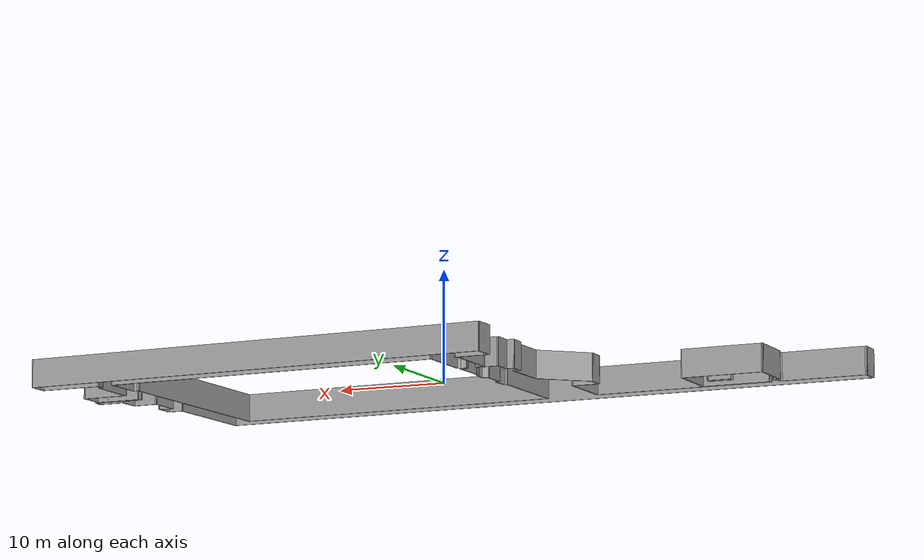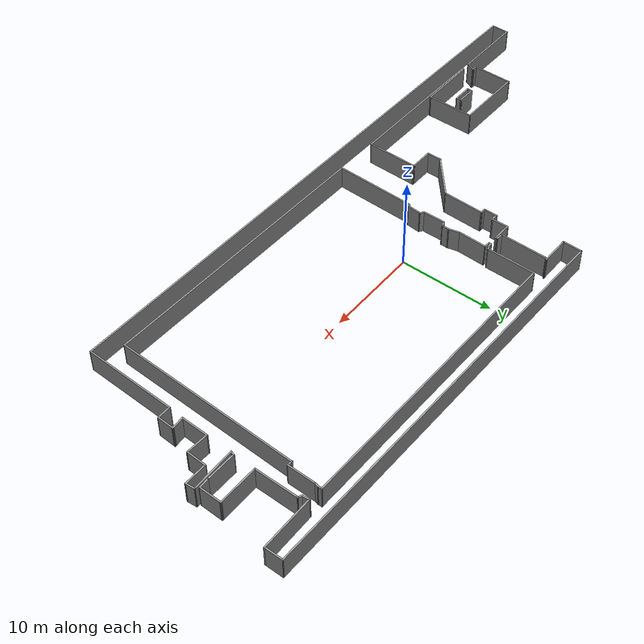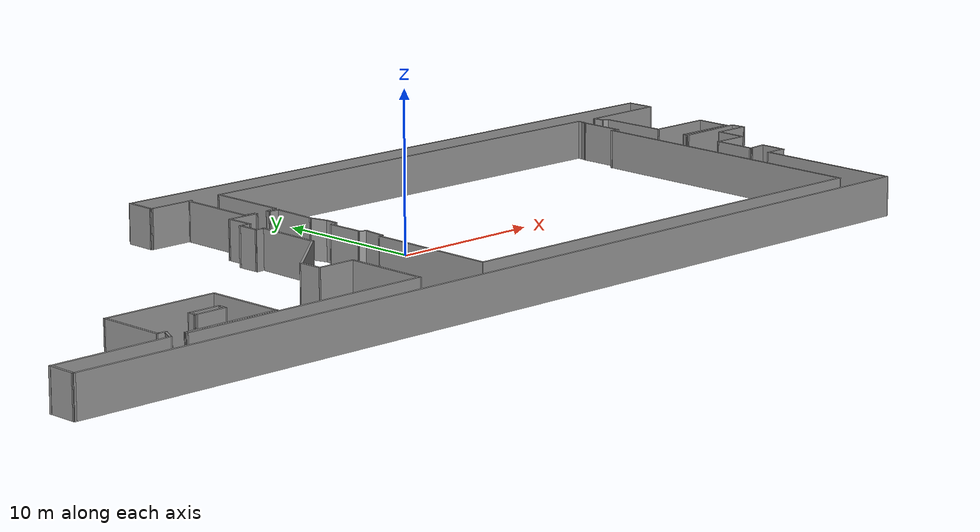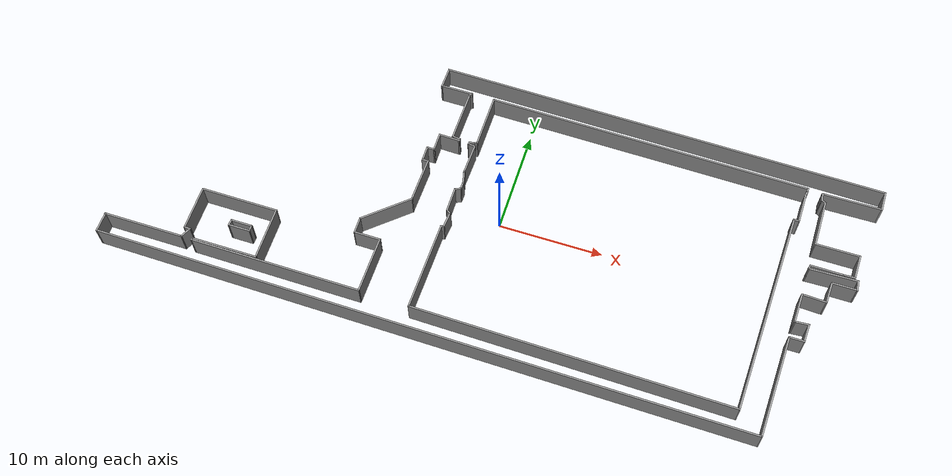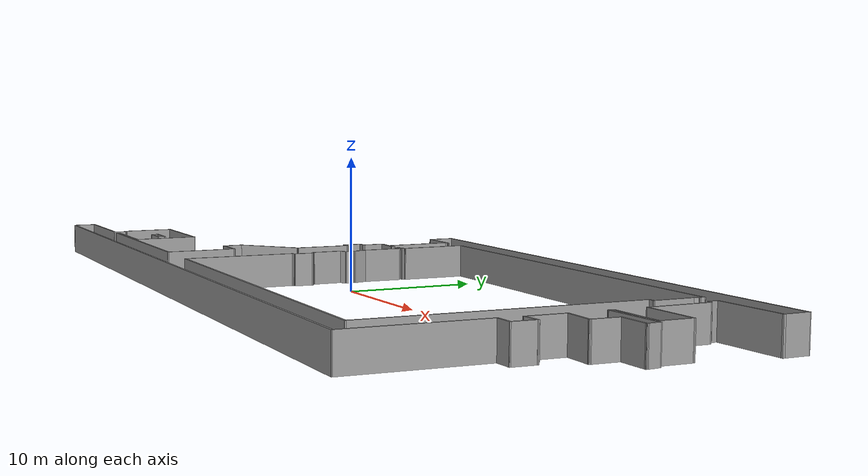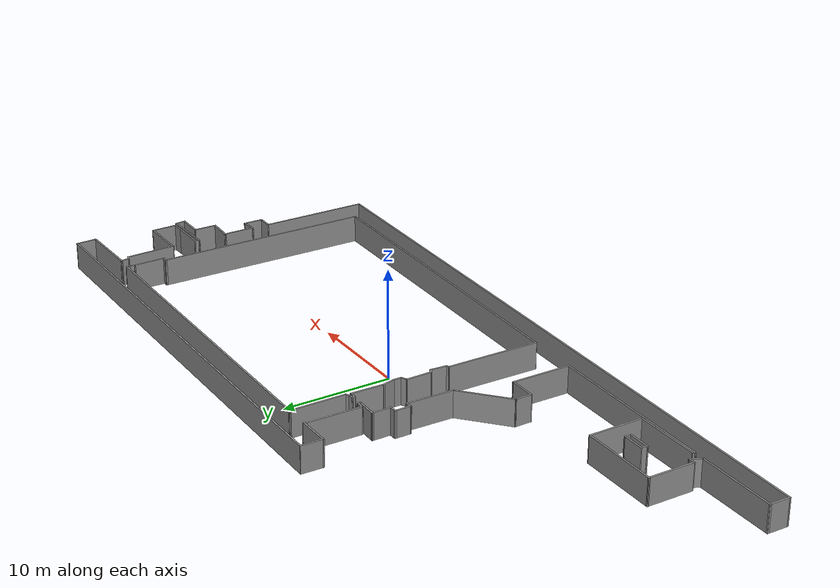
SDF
<?xml version='1.0'?>
<sdf version='1.7'>
  <model name='EnvDC_2ndfloor'>
    <pose>-0.569847 -0.041602 0 0 -0 0</pose>
    <link name='Wall_1'>
      <collision name='Wall_1_Collision'>
        <geometry>
          <box>
            <size>1.99026 0.15 2.5</size>
          </box>
        </geometry>
        <pose>0 0 1.25 0 -0 0</pose>
      </collision>
      <visual name='Wall_1_Visual'>
        <pose>0 0 1.25 0 -0 0</pose>
        <geometry>
          <box>
            <size>1.99026 0.15 2.5</size>
          </box>
        </geometry>
        <material>
          <script>
            <uri>file://media/materials/scripts/gazebo.material</uri>
            <name>Gazebo/Grey</name>
          </script>
          <ambient>1 1 1 1</ambient>
        </material>
        <meta>
          <layer>0</layer>
        </meta>
      </visual>
      <pose>-34.1632 -11.8549 0 0 -0 -1.5877</pose>
    </link>
    <link name='Wall_10'>
      <collision name='Wall_10_Collision'>
        <geometry>
          <box>
            <size>2.17945 0.15 2.5</size>
          </box>
        </geometry>
        <pose>0 0 1.25 0 -0 0</pose>
      </collision>
      <visual name='Wall_10_Visual'>
        <pose>0 0 1.25 0 -0 0</pose>
        <geometry>
          <box>
            <size>2.17945 0.15 2.5</size>
          </box>
        </geometry>
        <material>
          <script>
            <uri>file://media/materials/scripts/gazebo.material</uri>
            <name>Gazebo/Grey</name>
          </script>
          <ambient>1 1 1 1</ambient>
        </material>
        <meta>
          <layer>0</layer>
        </meta>
      </visual>
      <pose>31.2086 1.32342 0 0 -0 1.53082</pose>
    </link>
    <link name='Wall_101'>
      <collision name='Wall_101_Collision'>
        <geometry>
          <box>
            <size>1.57039 0.15 2.5</size>
          </box>
        </geometry>
        <pose>0 0 1.25 0 -0 0</pose>
      </collision>
      <visual name='Wall_101_Visual'>
        <pose>0 0 1.25 0 -0 0</pose>
        <geometry>
          <box>
            <size>1.57039 0.15 2.5</size>
          </box>
        </geometry>
        <material>
          <script>
            <uri>file://media/materials/scripts/gazebo.material</uri>
            <name>Gazebo/Grey</name>
          </script>
          <ambient>1 1 1 1</ambient>
        </material>
        <meta>
          <layer>0</layer>
        </meta>
      </visual>
      <pose>-3.86996 -2.02375 0 0 -0 -1.65652</pose>
    </link>
    <link name='Wall_103'>
      <collision name='Wall_103_Collision'>
        <geometry>
          <box>
            <size>0.402426 0.15 2.5</size>
          </box>
        </geometry>
        <pose>0 0 1.25 0 -0 0</pose>
      </collision>
      <visual name='Wall_103_Visual'>
        <pose>0 0 1.25 0 -0 0</pose>
        <geometry>
          <box>
            <size>0.402426 0.15 2.5</size>
          </box>
        </geometry>
        <material>
          <script>
            <uri>file://media/materials/scripts/gazebo.material</uri>
            <name>Gazebo/Grey</name>
          </script>
          <ambient>1 1 1 1</ambient>
        </material>
        <meta>
          <layer>0</layer>
        </meta>
      </visual>
      <pose>-4.04674 -2.78056 0 0 -0 -2.7367</pose>
    </link>
    <link name='Wall_104'>
      <collision name='Wall_104_Collision'>
        <geometry>
          <box>
            <size>8.63748 0.15 2.5</size>
          </box>
        </geometry>
        <pose>0 0 1.25 0 -0 0</pose>
      </collision>
      <visual name='Wall_104_Visual'>
        <pose>0 0 1.25 0 -0 0</pose>
        <geometry>
          <box>
            <size>8.63748 0.15 2.5</size>
          </box>
        </geometry>
        <material>
          <script>
            <uri>file://media/materials/scripts/gazebo.material</uri>
            <name>Gazebo/Grey</name>
          </script>
          <ambient>1 1 1 1</ambient>
        </material>
        <meta>
          <layer>0</layer>
        </meta>
      </visual>
      <pose>-4.26218 -7.07285 0 0 -0 -1.59423</pose>
    </link>
    <link name='Wall_11'>
      <collision name='Wall_11_Collision'>
        <geometry>
          <box>
            <size>2.46182 0.15 2.5</size>
          </box>
        </geometry>
        <pose>0 0 1.25 0 -0 0</pose>
      </collision>
      <visual name='Wall_11_Visual'>
        <pose>0 0 1.25 0 -0 0</pose>
        <geometry>
          <box>
            <size>2.46182 0.15 2.5</size>
          </box>
        </geometry>
        <material>
          <script>
            <uri>file://media/materials/scripts/gazebo.material</uri>
            <name>Gazebo/Grey</name>
          </script>
          <ambient>1 1 1 1</ambient>
        </material>
        <meta>
          <layer>0</layer>
        </meta>
      </visual>
      <pose>32.405 2.32719 0 0 -0 -0.008772</pose>
    </link>
    <link name='Wall_12'>
      <collision name='Wall_12_Collision'>
        <geometry>
          <box>
            <size>1.06612 0.15 2.5</size>
          </box>
        </geometry>
        <pose>0 0 1.25 0 -0 0</pose>
      </collision>
      <visual name='Wall_12_Visual'>
        <pose>0 0 1.25 0 -0 0</pose>
        <geometry>
          <box>
            <size>1.06612 0.15 2.5</size>
          </box>
        </geometry>
        <material>
          <script>
            <uri>file://media/materials/scripts/gazebo.material</uri>
            <name>Gazebo/Grey</name>
          </script>
          <ambient>1 1 1 1</ambient>
        </material>
        <meta>
          <layer>0</layer>
        </meta>
      </visual>
      <pose>33.5203 2.77332 0 0 -0 1.65945</pose>
    </link>
    <link name='Wall_13'>
      <collision name='Wall_13_Collision'>
        <geometry>
          <box>
            <size>4.67321 0.15 2.5</size>
          </box>
        </geometry>
        <pose>0 0 1.25 0 -0 0</pose>
      </collision>
      <visual name='Wall_13_Visual'>
        <pose>0 0 1.25 0 -0 0</pose>
        <geometry>
          <box>
            <size>4.67321 0.15 2.5</size>
          </box>
        </geometry>
        <material>
          <script>
            <uri>file://media/materials/scripts/gazebo.material</uri>
            <name>Gazebo/Grey</name>
          </script>
          <ambient>1 1 1 1</ambient>
        </material>
        <meta>
          <layer>0</layer>
        </meta>
      </visual>
      <pose>31.2187 3.17889 0 0 -0 -3.11917</pose>
    </link>
    <link name='Wall_14'>
      <collision name='Wall_14_Collision'>
        <geometry>
          <box>
            <size>0.504146 0.15 2.5</size>
          </box>
        </geometry>
        <pose>0 0 1.25 0 -0 0</pose>
      </collision>
      <visual name='Wall_14_Visual'>
        <pose>0 0 1.25 0 -0 0</pose>
        <geometry>
          <box>
            <size>0.504146 0.15 2.5</size>
          </box>
        </geometry>
        <material>
          <script>
            <uri>file://media/materials/scripts/gazebo.material</uri>
            <name>Gazebo/Grey</name>
          </script>
          <ambient>1 1 1 1</ambient>
        </material>
        <meta>
          <layer>0</layer>
        </meta>
      </visual>
      <pose>28.9982 3.30056 0 0 -0 1.33971</pose>
    </link>
    <link name='Wall_15'>
      <collision name='Wall_15_Collision'>
        <geometry>
          <box>
            <size>3.23257 0.15 2.5</size>
          </box>
        </geometry>
        <pose>0 0 1.25 0 -0 0</pose>
      </collision>
      <visual name='Wall_15_Visual'>
        <pose>0 0 1.25 0 -0 0</pose>
        <geometry>
          <box>
            <size>3.23257 0.15 2.5</size>
          </box>
        </geometry>
        <material>
          <script>
            <uri>file://media/materials/scripts/gazebo.material</uri>
            <name>Gazebo/Grey</name>
          </script>
          <ambient>1 1 1 1</ambient>
        </material>
        <meta>
          <layer>0</layer>
        </meta>
      </visual>
      <pose>30.5799 3.45264 0 0 -0 -0.013157</pose>
    </link>
    <link name='Wall_16'>
      <collision name='Wall_16_Collision'>
        <geometry>
          <box>
            <size>1.16412 0.15 2.5</size>
          </box>
        </geometry>
        <pose>0 0 1.25 0 -0 0</pose>
      </collision>
      <visual name='Wall_16_Visual'>
        <pose>0 0 1.25 0 -0 0</pose>
        <geometry>
          <box>
            <size>1.16412 0.15 2.5</size>
          </box>
        </geometry>
        <material>
          <script>
            <uri>file://media/materials/scripts/gazebo.material</uri>
            <name>Gazebo/Grey</name>
          </script>
          <ambient>1 1 1 1</ambient>
        </material>
        <meta>
          <layer>0</layer>
        </meta>
      </visual>
      <pose>32.6281 3.45264 0 0 -0 0.039979</pose>
    </link>
    <link name='Wall_17'>
      <collision name='Wall_17_Collision'>
        <geometry>
          <box>
            <size>2.42153 0.15 2.5</size>
          </box>
        </geometry>
        <pose>0 0 1.25 0 -0 0</pose>
      </collision>
      <visual name='Wall_17_Visual'>
        <pose>0 0 1.25 0 -0 0</pose>
        <geometry>
          <box>
            <size>2.42153 0.15 2.5</size>
          </box>
        </geometry>
        <material>
          <script>
            <uri>file://media/materials/scripts/gazebo.material</uri>
            <name>Gazebo/Grey</name>
          </script>
          <ambient>1 1 1 1</ambient>
        </material>
        <meta>
          <layer>0</layer>
        </meta>
      </visual>
      <pose>33.1553 4.60851 0 0 -0 1.55294</pose>
    </link>
    <link name='Wall_18'>
      <collision name='Wall_18_Collision'>
        <geometry>
          <box>
            <size>4.28678 0.15 2.5</size>
          </box>
        </geometry>
        <pose>0 0 1.25 0 -0 0</pose>
      </collision>
      <visual name='Wall_18_Visual'>
        <pose>0 0 1.25 0 -0 0</pose>
        <geometry>
          <box>
            <size>4.28678 0.15 2.5</size>
          </box>
        </geometry>
        <material>
          <script>
            <uri>file://media/materials/scripts/gazebo.material</uri>
            <name>Gazebo/Grey</name>
          </script>
          <ambient>1 1 1 1</ambient>
        </material>
        <meta>
          <layer>0</layer>
        </meta>
      </visual>
      <pose>31.1072 5.75423 0 0 -0 3.13669</pose>
    </link>
    <link name='Wall_2'>
      <collision name='Wall_2_Collision'>
        <geometry>
          <box>
            <size>62.7268 0.15 2.5</size>
          </box>
        </geometry>
        <pose>0 0 1.25 0 -0 0</pose>
      </collision>
      <visual name='Wall_2_Visual'>
        <pose>0 0 1.25 0 -0 0</pose>
        <geometry>
          <box>
            <size>62.7268 0.15 2.5</size>
          </box>
        </geometry>
        <material>
          <script>
            <uri>file://media/materials/scripts/gazebo.material</uri>
            <name>Gazebo/Grey</name>
          </script>
          <ambient>1 1 1 1</ambient>
        </material>
        <meta>
          <layer>0</layer>
        </meta>
      </visual>
      <pose>-2.89443 -13.2794 0 0 -0 -0.016126</pose>
    </link>
    <link name='Wall_20'>
      <collision name='Wall_20_Collision'>
        <geometry>
          <box>
            <size>4.65179 0.15 2.5</size>
          </box>
        </geometry>
        <pose>0 0 1.25 0 -0 0</pose>
      </collision>
      <visual name='Wall_20_Visual'>
        <pose>0 0 1.25 0 -0 0</pose>
        <geometry>
          <box>
            <size>4.65179 0.15 2.5</size>
          </box>
        </geometry>
        <material>
          <script>
            <uri>file://media/materials/scripts/gazebo.material</uri>
            <name>Gazebo/Grey</name>
          </script>
          <ambient>1 1 1 1</ambient>
        </material>
        <meta>
          <layer>0</layer>
        </meta>
      </visual>
      <pose>29.0388 8.01527 0 0 -0 1.5708</pose>
    </link>
    <link name='Wall_22'>
      <collision name='Wall_22_Collision'>
        <geometry>
          <box>
            <size>0.529925 0.15 2.5</size>
          </box>
        </geometry>
        <pose>0 0 1.25 0 -0 0</pose>
      </collision>
      <visual name='Wall_22_Visual'>
        <pose>0 0 1.25 0 -0 0</pose>
        <geometry>
          <box>
            <size>0.529925 0.15 2.5</size>
          </box>
        </geometry>
        <material>
          <script>
            <uri>file://media/materials/scripts/gazebo.material</uri>
            <name>Gazebo/Grey</name>
          </script>
          <ambient>1 1 1 1</ambient>
        </material>
        <meta>
          <layer>0</layer>
        </meta>
      </visual>
      <pose>28.8692 10.3518 0 0 -0 2.67384</pose>
    </link>
    <link name='Wall_23'>
      <collision name='Wall_23_Collision'>
        <geometry>
          <box>
            <size>0.846416 0.15 2.5</size>
          </box>
        </geometry>
        <pose>0 0 1.25 0 -0 0</pose>
      </collision>
      <visual name='Wall_23_Visual'>
        <pose>0 0 1.25 0 -0 0</pose>
        <geometry>
          <box>
            <size>0.846416 0.15 2.5</size>
          </box>
        </geometry>
        <material>
          <script>
            <uri>file://media/materials/scripts/gazebo.material</uri>
            <name>Gazebo/Grey</name>
          </script>
          <ambient>1 1 1 1</ambient>
        </material>
        <meta>
          <layer>0</layer>
        </meta>
      </visual>
      <pose>28.6593 10.7833 0 0 -0 1.68694</pose>
    </link>
    <link name='Wall_25'>
      <collision name='Wall_25_Collision'>
        <geometry>
          <box>
            <size>5.71068 0.15 2.5</size>
          </box>
        </geometry>
        <pose>0 0 1.25 0 -0 0</pose>
      </collision>
      <visual name='Wall_25_Visual'>
        <pose>0 0 1.25 0 -0 0</pose>
        <geometry>
          <box>
            <size>5.71068 0.15 2.5</size>
          </box>
        </geometry>
        <material>
          <script>
            <uri>file://media/materials/scripts/gazebo.material</uri>
            <name>Gazebo/Grey</name>
          </script>
          <ambient>1 1 1 1</ambient>
        </material>
        <meta>
          <layer>0</layer>
        </meta>
      </visual>
      <pose>31.3993 11.1452 0 0 -0 0.005758</pose>
    </link>
    <link name='Wall_26'>
      <collision name='Wall_26_Collision'>
        <geometry>
          <box>
            <size>1.96947 0.15 2.5</size>
          </box>
        </geometry>
        <pose>0 0 1.25 0 -0 0</pose>
      </collision>
      <visual name='Wall_26_Visual'>
        <pose>0 0 1.25 0 -0 0</pose>
        <geometry>
          <box>
            <size>1.96947 0.15 2.5</size>
          </box>
        </geometry>
        <material>
          <script>
            <uri>file://media/materials/scripts/gazebo.material</uri>
            <name>Gazebo/Grey</name>
          </script>
          <ambient>1 1 1 1</ambient>
        </material>
        <meta>
          <layer>0</layer>
        </meta>
      </visual>
      <pose>34.1745 12.0709 0 0 -0 1.57638</pose>
    </link>
    <link name='Wall_28'>
      <collision name='Wall_28_Collision'>
        <geometry>
          <box>
            <size>43.2456 0.15 2.5</size>
          </box>
        </geometry>
        <pose>0 0 1.25 0 -0 0</pose>
      </collision>
      <visual name='Wall_28_Visual'>
        <pose>0 0 1.25 0 -0 0</pose>
        <geometry>
          <box>
            <size>43.2456 0.15 2.5</size>
          </box>
        </geometry>
        <material>
          <script>
            <uri>file://media/materials/scripts/gazebo.material</uri>
            <name>Gazebo/Grey</name>
          </script>
          <ambient>1 1 1 1</ambient>
        </material>
        <meta>
          <layer>0</layer>
        </meta>
      </visual>
      <pose>12.625 13.3825 0 0 -0 3.12294</pose>
    </link>
    <link name='Wall_29'>
      <collision name='Wall_29_Collision'>
        <geometry>
          <box>
            <size>2.12365 0.15 2.5</size>
          </box>
        </geometry>
        <pose>0 0 1.25 0 -0 0</pose>
      </collision>
      <visual name='Wall_29_Visual'>
        <pose>0 0 1.25 0 -0 0</pose>
        <geometry>
          <box>
            <size>2.12365 0.15 2.5</size>
          </box>
        </geometry>
        <material>
          <script>
            <uri>file://media/materials/scripts/gazebo.material</uri>
            <name>Gazebo/Grey</name>
          </script>
          <ambient>1 1 1 1</ambient>
        </material>
        <meta>
          <layer>0</layer>
        </meta>
      </visual>
      <pose>-8.94602 12.7978 0 0 -0 -1.59782</pose>
    </link>
    <link name='Wall_30'>
      <collision name='Wall_30_Collision'>
        <geometry>
          <box>
            <size>3.20783 0.15 2.5</size>
          </box>
        </geometry>
        <pose>0 0 1.25 0 -0 0</pose>
      </collision>
      <visual name='Wall_30_Visual'>
        <pose>0 0 1.25 0 -0 0</pose>
        <geometry>
          <box>
            <size>3.20783 0.15 2.5</size>
          </box>
        </geometry>
        <material>
          <script>
            <uri>file://media/materials/scripts/gazebo.material</uri>
            <name>Gazebo/Grey</name>
          </script>
          <ambient>1 1 1 1</ambient>
        </material>
        <meta>
          <layer>0</layer>
        </meta>
      </visual>
      <pose>-7.4438 11.8022 0 0 -0 -0.005814</pose>
    </link>
    <link name='Wall_31'>
      <collision name='Wall_31_Collision'>
        <geometry>
          <box>
            <size>0.389176 0.15 2.5</size>
          </box>
        </geometry>
        <pose>0 0 1.25 0 -0 0</pose>
      </collision>
      <visual name='Wall_31_Visual'>
        <pose>0 0 1.25 0 -0 0</pose>
        <geometry>
          <box>
            <size>0.389176 0.15 2.5</size>
          </box>
        </geometry>
        <material>
          <script>
            <uri>file://media/materials/scripts/gazebo.material</uri>
            <name>Gazebo/Grey</name>
          </script>
          <ambient>1 1 1 1</ambient>
        </material>
        <meta>
          <layer>0</layer>
        </meta>
      </visual>
      <pose>-6.0038 11.7133 0 0 -0 -2.40878</pose>
    </link>
    <link name='Wall_35'>
      <collision name='Wall_35_Collision'>
        <geometry>
          <box>
            <size>5.10162 0.15 2.5</size>
          </box>
        </geometry>
        <pose>0 0 1.25 0 -0 0</pose>
      </collision>
      <visual name='Wall_35_Visual'>
        <pose>0 0 1.25 0 -0 0</pose>
        <geometry>
          <box>
            <size>5.10162 0.15 2.5</size>
          </box>
        </geometry>
        <material>
          <script>
            <uri>file://media/materials/scripts/gazebo.material</uri>
            <name>Gazebo/Grey</name>
          </script>
          <ambient>1 1 1 1</ambient>
        </material>
        <meta>
          <layer>0</layer>
        </meta>
      </visual>
      <pose>-6.13249 9.15785 0 0 -0 -1.58688</pose>
    </link>
    <link name='Wall_37'>
      <collision name='Wall_37_Collision'>
        <geometry>
          <box>
            <size>0.857235 0.15 2.5</size>
          </box>
        </geometry>
        <pose>0 0 1.25 0 -0 0</pose>
      </collision>
      <visual name='Wall_37_Visual'>
        <pose>0 0 1.25 0 -0 0</pose>
        <geometry>
          <box>
            <size>0.857235 0.15 2.5</size>
          </box>
        </geometry>
        <material>
          <script>
            <uri>file://media/materials/scripts/gazebo.material</uri>
            <name>Gazebo/Grey</name>
          </script>
          <ambient>1 1 1 1</ambient>
        </material>
        <meta>
          <layer>0</layer>
        </meta>
      </visual>
      <pose>-5.82253 6.63064 0 0 -0 -0.146804</pose>
    </link>
    <link name='Wall_38'>
      <collision name='Wall_38_Collision'>
        <geometry>
          <box>
            <size>0.311188 0.15 2.5</size>
          </box>
        </geometry>
        <pose>0 0 1.25 0 -0 0</pose>
      </collision>
      <visual name='Wall_38_Visual'>
        <pose>0 0 1.25 0 -0 0</pose>
        <geometry>
          <box>
            <size>0.311188 0.15 2.5</size>
          </box>
        </geometry>
        <material>
          <script>
            <uri>file://media/materials/scripts/gazebo.material</uri>
            <name>Gazebo/Grey</name>
          </script>
          <ambient>1 1 1 1</ambient>
        </material>
        <meta>
          <layer>0</layer>
        </meta>
      </visual>
      <pose>-5.47056 6.49807 0 0 -0 -1.54353</pose>
    </link>
    <link name='Wall_4'>
      <collision name='Wall_4_Collision'>
        <geometry>
          <box>
            <size>9.90862 0.15 2.5</size>
          </box>
        </geometry>
        <pose>0 0 1.25 0 -0 0</pose>
      </collision>
      <visual name='Wall_4_Visual'>
        <pose>0 0 1.25 0 -0 0</pose>
        <geometry>
          <box>
            <size>9.90862 0.15 2.5</size>
          </box>
        </geometry>
        <material>
          <script>
            <uri>file://media/materials/scripts/gazebo.material</uri>
            <name>Gazebo/Grey</name>
          </script>
          <ambient>1 1 1 1</ambient>
        </material>
        <meta>
          <layer>0</layer>
        </meta>
      </visual>
      <pose>28.542 -8.907 0 0 -0 1.53962</pose>
    </link>
    <link name='Wall_41'>
      <collision name='Wall_41_Collision'>
        <geometry>
          <box>
            <size>2.12879 0.15 2.5</size>
          </box>
        </geometry>
        <pose>0 0 1.25 0 -0 0</pose>
      </collision>
      <visual name='Wall_41_Visual'>
        <pose>0 0 1.25 0 -0 0</pose>
        <geometry>
          <box>
            <size>2.12879 0.15 2.5</size>
          </box>
        </geometry>
        <material>
          <script>
            <uri>file://media/materials/scripts/gazebo.material</uri>
            <name>Gazebo/Grey</name>
          </script>
          <ambient>1 1 1 1</ambient>
        </material>
        <meta>
          <layer>0</layer>
        </meta>
      </visual>
      <pose>-6.44443 6.44695 0 0 -0 3.11124</pose>
    </link>
    <link name='Wall_43'>
      <collision name='Wall_43_Collision'>
        <geometry>
          <box>
            <size>1.85116 0.15 2.5</size>
          </box>
        </geometry>
        <pose>0 0 1.25 0 -0 0</pose>
      </collision>
      <visual name='Wall_43_Visual'>
        <pose>0 0 1.25 0 -0 0</pose>
        <geometry>
          <box>
            <size>1.85116 0.15 2.5</size>
          </box>
        </geometry>
        <material>
          <script>
            <uri>file://media/materials/scripts/gazebo.material</uri>
            <name>Gazebo/Grey</name>
          </script>
          <ambient>1 1 1 1</ambient>
        </material>
        <meta>
          <layer>0</layer>
        </meta>
      </visual>
      <pose>-7.42901 5.62641 0 0 -0 -1.56568</pose>
    </link>
    <link name='Wall_45'>
      <collision name='Wall_45_Collision'>
        <geometry>
          <box>
            <size>0.81938 0.15 2.5</size>
          </box>
        </geometry>
        <pose>0 0 1.25 0 -0 0</pose>
      </collision>
      <visual name='Wall_45_Visual'>
        <pose>0 0 1.25 0 -0 0</pose>
        <geometry>
          <box>
            <size>0.81938 0.15 2.5</size>
          </box>
        </geometry>
        <material>
          <script>
            <uri>file://media/materials/scripts/gazebo.material</uri>
            <name>Gazebo/Grey</name>
          </script>
          <ambient>1 1 1 1</ambient>
        </material>
        <meta>
          <layer>0</layer>
        </meta>
      </visual>
      <pose>-7.75923 4.77584 0 0 -0 3.14159</pose>
    </link>
    <link name='Wall_46'>
      <collision name='Wall_46_Collision'>
        <geometry>
          <box>
            <size>1.54803 0.15 2.5</size>
          </box>
        </geometry>
        <pose>0 0 1.25 0 -0 0</pose>
      </collision>
      <visual name='Wall_46_Visual'>
        <pose>0 0 1.25 0 -0 0</pose>
        <geometry>
          <box>
            <size>1.54803 0.15 2.5</size>
          </box>
        </geometry>
        <material>
          <script>
            <uri>file://media/materials/scripts/gazebo.material</uri>
            <name>Gazebo/Grey</name>
          </script>
          <ambient>1 1 1 1</ambient>
        </material>
        <meta>
          <layer>0</layer>
        </meta>
      </visual>
      <pose>-8.0938 4.07683 0 0 -0 -1.5708</pose>
    </link>
    <link name='Wall_5'>
      <collision name='Wall_5_Collision'>
        <geometry>
          <box>
            <size>1.5 0.15 2.5</size>
          </box>
        </geometry>
        <pose>0 0 1.25 0 -0 0</pose>
      </collision>
      <visual name='Wall_5_Visual'>
        <pose>0 0 1.25 0 -0 0</pose>
        <geometry>
          <box>
            <size>1.5 0.15 2.5</size>
          </box>
        </geometry>
        <material>
          <script>
            <uri>file://media/materials/scripts/gazebo.material</uri>
            <name>Gazebo/Grey</name>
          </script>
          <ambient>1 1 1 1</ambient>
        </material>
        <meta>
          <layer>0</layer>
        </meta>
      </visual>
      <pose>29.3691 -4.03006 0 0 -0 0</pose>
    </link>
    <link name='Wall_50'>
      <collision name='Wall_50_Collision'>
        <geometry>
          <box>
            <size>0.687835 0.15 2.5</size>
          </box>
        </geometry>
        <pose>0 0 1.25 0 -0 0</pose>
      </collision>
      <visual name='Wall_50_Visual'>
        <pose>0 0 1.25 0 -0 0</pose>
        <geometry>
          <box>
            <size>0.687835 0.15 2.5</size>
          </box>
        </geometry>
        <material>
          <script>
            <uri>file://media/materials/scripts/gazebo.material</uri>
            <name>Gazebo/Grey</name>
          </script>
          <ambient>1 1 1 1</ambient>
        </material>
        <meta>
          <layer>0</layer>
        </meta>
      </visual>
      <pose>-7.82495 3.37781 0 0 -0 0.022219</pose>
    </link>
    <link name='Wall_52'>
      <collision name='Wall_52_Collision'>
        <geometry>
          <box>
            <size>4.46619 0.15 2.5</size>
          </box>
        </geometry>
        <pose>0 0 1.25 0 -0 0</pose>
      </collision>
      <visual name='Wall_52_Visual'>
        <pose>0 0 1.25 0 -0 0</pose>
        <geometry>
          <box>
            <size>4.46619 0.15 2.5</size>
          </box>
        </geometry>
        <material>
          <script>
            <uri>file://media/materials/scripts/gazebo.material</uri>
            <name>Gazebo/Grey</name>
          </script>
          <ambient>1 1 1 1</ambient>
        </material>
        <meta>
          <layer>0</layer>
        </meta>
      </visual>
      <pose>-7.61458 1.22648 0 0 -0 -1.5979</pose>
    </link>
    <link name='Wall_53'>
      <collision name='Wall_53_Collision'>
        <geometry>
          <box>
            <size>5.29225 0.15 2.5</size>
          </box>
        </geometry>
        <pose>0 0 1.25 0 -0 0</pose>
      </collision>
      <visual name='Wall_53_Visual'>
        <pose>0 0 1.25 0 -0 0</pose>
        <geometry>
          <box>
            <size>5.29225 0.15 2.5</size>
          </box>
        </geometry>
        <material>
          <script>
            <uri>file://media/materials/scripts/gazebo.material</uri>
            <name>Gazebo/Grey</name>
          </script>
          <ambient>1 1 1 1</ambient>
        </material>
        <meta>
          <layer>0</layer>
        </meta>
      </visual>
      <pose>-9.61058 -2.621 0 0 -0 -2.42427</pose>
    </link>
    <link name='Wall_54'>
      <collision name='Wall_54_Collision'>
        <geometry>
          <box>
            <size>1.63412 0.15 2.5</size>
          </box>
        </geometry>
        <pose>0 0 1.25 0 -0 0</pose>
      </collision>
      <visual name='Wall_54_Visual'>
        <pose>0 0 1.25 0 -0 0</pose>
        <geometry>
          <box>
            <size>1.63412 0.15 2.5</size>
          </box>
        </geometry>
        <material>
          <script>
            <uri>file://media/materials/scripts/gazebo.material</uri>
            <name>Gazebo/Grey</name>
          </script>
          <ambient>1 1 1 1</ambient>
        </material>
        <meta>
          <layer>0</layer>
        </meta>
      </visual>
      <pose>-11.5412 -5.0532 0 0 -0 -1.56154</pose>
    </link>
    <link name='Wall_55'>
      <collision name='Wall_55_Collision'>
        <geometry>
          <box>
            <size>2.60984 0.15 2.5</size>
          </box>
        </geometry>
        <pose>0 0 1.25 0 -0 0</pose>
      </collision>
      <visual name='Wall_55_Visual'>
        <pose>0 0 1.25 0 -0 0</pose>
        <geometry>
          <box>
            <size>2.60984 0.15 2.5</size>
          </box>
        </geometry>
        <material>
          <script>
            <uri>file://media/materials/scripts/gazebo.material</uri>
            <name>Gazebo/Grey</name>
          </script>
          <ambient>1 1 1 1</ambient>
        </material>
        <meta>
          <layer>0</layer>
        </meta>
      </visual>
      <pose>-10.3045 -5.80897 0 0 -0 -0.011173</pose>
    </link>
    <link name='Wall_57'>
      <collision name='Wall_57_Collision'>
        <geometry>
          <box>
            <size>5.56469 0.15 2.5</size>
          </box>
        </geometry>
        <pose>0 0 1.25 0 -0 0</pose>
      </collision>
      <visual name='Wall_57_Visual'>
        <pose>0 0 1.25 0 -0 0</pose>
        <geometry>
          <box>
            <size>5.56469 0.15 2.5</size>
          </box>
        </geometry>
        <material>
          <script>
            <uri>file://media/materials/scripts/gazebo.material</uri>
            <name>Gazebo/Grey</name>
          </script>
          <ambient>1 1 1 1</ambient>
        </material>
        <meta>
          <layer>0</layer>
        </meta>
      </visual>
      <pose>-9.11589 -8.52975 0 0 -0 -1.58602</pose>
    </link>
    <link name='Wall_59'>
      <collision name='Wall_59_Collision'>
        <geometry>
          <box>
            <size>16.4889 0.15 2.5</size>
          </box>
        </geometry>
        <pose>0 0 1.25 0 -0 0</pose>
      </collision>
      <visual name='Wall_59_Visual'>
        <pose>0 0 1.25 0 -0 0</pose>
        <geometry>
          <box>
            <size>16.4889 0.15 2.5</size>
          </box>
        </geometry>
        <material>
          <script>
            <uri>file://media/materials/scripts/gazebo.material</uri>
            <name>Gazebo/Grey</name>
          </script>
          <ambient>1 1 1 1</ambient>
        </material>
        <meta>
          <layer>0</layer>
        </meta>
      </visual>
      <pose>-17.3259 -11.1401 0 0 -0 3.12975</pose>
    </link>
    <link name='Wall_6'>
      <collision name='Wall_6_Collision'>
        <geometry>
          <box>
            <size>1.8548 0.15 2.5</size>
          </box>
        </geometry>
        <pose>0 0 1.25 0 -0 0</pose>
      </collision>
      <visual name='Wall_6_Visual'>
        <pose>0 0 1.25 0 -0 0</pose>
        <geometry>
          <box>
            <size>1.8548 0.15 2.5</size>
          </box>
        </geometry>
        <material>
          <script>
            <uri>file://media/materials/scripts/gazebo.material</uri>
            <name>Gazebo/Grey</name>
          </script>
          <ambient>1 1 1 1</ambient>
        </material>
        <meta>
          <layer>0</layer>
        </meta>
      </visual>
      <pose>30.0788 -3.17837 0 0 -0 1.53003</pose>
    </link>
    <link name='Wall_60'>
      <collision name='Wall_60_Collision'>
        <geometry>
          <box>
            <size>0.32563 0.15 2.5</size>
          </box>
        </geometry>
        <pose>0 0 1.25 0 -0 0</pose>
      </collision>
      <visual name='Wall_60_Visual'>
        <pose>0 0 1.25 0 -0 0</pose>
        <geometry>
          <box>
            <size>0.32563 0.15 2.5</size>
          </box>
        </geometry>
        <material>
          <script>
            <uri>file://media/materials/scripts/gazebo.material</uri>
            <name>Gazebo/Grey</name>
          </script>
          <ambient>1 1 1 1</ambient>
        </material>
        <meta>
          <layer>0</layer>
        </meta>
      </visual>
      <pose>-25.4502 -10.9676 0 0 -0 1.04058</pose>
    </link>
    <link name='Wall_61'>
      <collision name='Wall_61_Collision'>
        <geometry>
          <box>
            <size>6.31519 0.15 2.5</size>
          </box>
        </geometry>
        <pose>0 0 1.25 0 -0 0</pose>
      </collision>
      <visual name='Wall_61_Visual'>
        <pose>0 0 1.25 0 -0 0</pose>
        <geometry>
          <box>
            <size>6.31519 0.15 2.5</size>
          </box>
        </geometry>
        <material>
          <script>
            <uri>file://media/materials/scripts/gazebo.material</uri>
            <name>Gazebo/Grey</name>
          </script>
          <ambient>1 1 1 1</ambient>
        </material>
        <meta>
          <layer>0</layer>
        </meta>
      </visual>
      <pose>-22.3233 -10.9049 0 0 -0 -0.004237</pose>
    </link>
    <link name='Wall_62'>
      <collision name='Wall_62_Collision'>
        <geometry>
          <box>
            <size>5.19212 0.15 2.5</size>
          </box>
        </geometry>
        <pose>0 0 1.25 0 -0 0</pose>
      </collision>
      <visual name='Wall_62_Visual'>
        <pose>0 0 1.25 0 -0 0</pose>
        <geometry>
          <box>
            <size>5.19212 0.15 2.5</size>
          </box>
        </geometry>
        <material>
          <script>
            <uri>file://media/materials/scripts/gazebo.material</uri>
            <name>Gazebo/Grey</name>
          </script>
          <ambient>1 1 1 1</ambient>
        </material>
        <meta>
          <layer>0</layer>
        </meta>
      </visual>
      <pose>-19.2404 -8.39693 0 0 -0 1.57067</pose>
    </link>
    <link name='Wall_65'>
      <collision name='Wall_65_Collision'>
        <geometry>
          <box>
            <size>7.50042 0.15 2.5</size>
          </box>
        </geometry>
        <pose>0 0 1.25 0 -0 0</pose>
      </collision>
      <visual name='Wall_65_Visual'>
        <pose>0 0 1.25 0 -0 0</pose>
        <geometry>
          <box>
            <size>7.50042 0.15 2.5</size>
          </box>
        </geometry>
        <material>
          <script>
            <uri>file://media/materials/scripts/gazebo.material</uri>
            <name>Gazebo/Grey</name>
          </script>
          <ambient>1 1 1 1</ambient>
        </material>
        <meta>
          <layer>0</layer>
        </meta>
      </visual>
      <pose>-22.9151 -5.84408 0 0 -0 3.13294</pose>
    </link>
    <link name='Wall_66'>
      <collision name='Wall_66_Collision'>
        <geometry>
          <box>
            <size>4.37751 0.15 2.5</size>
          </box>
        </geometry>
        <pose>0 0 1.25 0 -0 0</pose>
      </collision>
      <visual name='Wall_66_Visual'>
        <pose>0 0 1.25 0 -0 0</pose>
        <geometry>
          <box>
            <size>4.37751 0.15 2.5</size>
          </box>
        </geometry>
        <material>
          <script>
            <uri>file://media/materials/scripts/gazebo.material</uri>
            <name>Gazebo/Grey</name>
          </script>
          <ambient>1 1 1 1</ambient>
        </material>
        <meta>
          <layer>0</layer>
        </meta>
      </visual>
      <pose>-26.6021 -7.92596 0 0 -0 -1.57644</pose>
    </link>
    <link name='Wall_67'>
      <collision name='Wall_67_Collision'>
        <geometry>
          <box>
            <size>0.699202 0.15 2.5</size>
          </box>
        </geometry>
        <pose>0 0 1.25 0 -0 0</pose>
      </collision>
      <visual name='Wall_67_Visual'>
        <pose>0 0 1.25 0 -0 0</pose>
        <geometry>
          <box>
            <size>0.699202 0.15 2.5</size>
          </box>
        </geometry>
        <material>
          <script>
            <uri>file://media/materials/scripts/gazebo.material</uri>
            <name>Gazebo/Grey</name>
          </script>
          <ambient>1 1 1 1</ambient>
        </material>
        <meta>
          <layer>0</layer>
        </meta>
      </visual>
      <pose>-26.3399 -10.0555 0 0 -0 -0.057906</pose>
    </link>
    <link name='Wall_68'>
      <collision name='Wall_68_Collision'>
        <geometry>
          <box>
            <size>1.18054 0.15 2.5</size>
          </box>
        </geometry>
        <pose>0 0 1.25 0 -0 0</pose>
      </collision>
      <visual name='Wall_68_Visual'>
        <pose>0 0 1.25 0 -0 0</pose>
        <geometry>
          <box>
            <size>1.18054 0.15 2.5</size>
          </box>
        </geometry>
        <material>
          <script>
            <uri>file://media/materials/scripts/gazebo.material</uri>
            <name>Gazebo/Grey</name>
          </script>
          <ambient>1 1 1 1</ambient>
        </material>
        <meta>
          <layer>0</layer>
        </meta>
      </visual>
      <pose>-26.2962 -10.5323 0 0 -0 -2.03444</pose>
    </link>
    <link name='Wall_7'>
      <collision name='Wall_7_Collision'>
        <geometry>
          <box>
            <size>1.43011 0.15 2.5</size>
          </box>
        </geometry>
        <pose>0 0 1.25 0 -0 0</pose>
      </collision>
      <visual name='Wall_7_Visual'>
        <pose>0 0 1.25 0 -0 0</pose>
        <geometry>
          <box>
            <size>1.43011 0.15 2.5</size>
          </box>
        </geometry>
        <material>
          <script>
            <uri>file://media/materials/scripts/gazebo.material</uri>
            <name>Gazebo/Grey</name>
          </script>
          <ambient>1 1 1 1</ambient>
        </material>
        <meta>
          <layer>0</layer>
        </meta>
      </visual>
      <pose>29.4748 -2.36724 0 0 -0 -3.07819</pose>
    </link>
    <link name='Wall_70'>
      <collision name='Wall_70_Collision'>
        <geometry>
          <box>
            <size>7.78657 0.15 2.5</size>
          </box>
        </geometry>
        <pose>0 0 1.25 0 -0 0</pose>
      </collision>
      <visual name='Wall_70_Visual'>
        <pose>0 0 1.25 0 -0 0</pose>
        <geometry>
          <box>
            <size>7.78657 0.15 2.5</size>
          </box>
        </geometry>
        <material>
          <script>
            <uri>file://media/materials/scripts/gazebo.material</uri>
            <name>Gazebo/Grey</name>
          </script>
          <ambient>1 1 1 1</ambient>
        </material>
        <meta>
          <layer>0</layer>
        </meta>
      </visual>
      <pose>-30.3448 -10.9685 0 0 -0 3.13514</pose>
    </link>
    <link name='Wall_72'>
      <collision name='Wall_72_Collision'>
        <geometry>
          <box>
            <size>2.15125 0.15 2.5</size>
          </box>
        </geometry>
        <pose>0 0 1.25 0 -0 0</pose>
      </collision>
      <visual name='Wall_72_Visual'>
        <pose>0 0 1.25 0 -0 0</pose>
        <geometry>
          <box>
            <size>2.15125 0.15 2.5</size>
          </box>
        </geometry>
        <material>
          <script>
            <uri>file://media/materials/scripts/gazebo.material</uri>
            <name>Gazebo/Grey</name>
          </script>
          <ambient>1 1 1 1</ambient>
        </material>
        <meta>
          <layer>0</layer>
        </meta>
      </visual>
      <pose>-21.7856 -8.06994 0 0 -0 -0.004566</pose>
    </link>
    <link name='Wall_73'>
      <collision name='Wall_73_Collision'>
        <geometry>
          <box>
            <size>0.671588 0.15 2.5</size>
          </box>
        </geometry>
        <pose>0 0 1.25 0 -0 0</pose>
      </collision>
      <visual name='Wall_73_Visual'>
        <pose>0 0 1.25 0 -0 0</pose>
        <geometry>
          <box>
            <size>0.671588 0.15 2.5</size>
          </box>
        </geometry>
        <material>
          <script>
            <uri>file://media/materials/scripts/gazebo.material</uri>
            <name>Gazebo/Grey</name>
          </script>
          <ambient>1 1 1 1</ambient>
        </material>
        <meta>
          <layer>0</layer>
        </meta>
      </visual>
      <pose>-20.7987 -8.33495 0 0 -0 -1.62338</pose>
    </link>
    <link name='Wall_74'>
      <collision name='Wall_74_Collision'>
        <geometry>
          <box>
            <size>2.16055 0.15 2.5</size>
          </box>
        </geometry>
        <pose>0 0 1.25 0 -0 0</pose>
      </collision>
      <visual name='Wall_74_Visual'>
        <pose>0 0 1.25 0 -0 0</pose>
        <geometry>
          <box>
            <size>2.16055 0.15 2.5</size>
          </box>
        </geometry>
        <material>
          <script>
            <uri>file://media/materials/scripts/gazebo.material</uri>
            <name>Gazebo/Grey</name>
          </script>
          <ambient>1 1 1 1</ambient>
        </material>
        <meta>
          <layer>0</layer>
        </meta>
      </visual>
      <pose>-21.8176 -8.59081 0 0 -0 3.13705</pose>
    </link>
    <link name='Wall_75'>
      <collision name='Wall_75_Collision'>
        <geometry>
          <box>
            <size>0.663033 0.15 2.5</size>
          </box>
        </geometry>
        <pose>0 0 1.25 0 -0 0</pose>
      </collision>
      <visual name='Wall_75_Visual'>
        <pose>0 0 1.25 0 -0 0</pose>
        <geometry>
          <box>
            <size>0.663033 0.15 2.5</size>
          </box>
        </geometry>
        <material>
          <script>
            <uri>file://media/materials/scripts/gazebo.material</uri>
            <name>Gazebo/Grey</name>
          </script>
          <ambient>1 1 1 1</ambient>
        </material>
        <meta>
          <layer>0</layer>
        </meta>
      </visual>
      <pose>-22.8045 -8.33038 0 0 -0 1.49949</pose>
    </link>
    <link name='Wall_77'>
      <collision name='Wall_77_Collision'>
        <geometry>
          <box>
            <size>30.5284 0.15 2.5</size>
          </box>
        </geometry>
        <pose>0 0 1.25 0 -0 0</pose>
      </collision>
      <visual name='Wall_77_Visual'>
        <pose>0 0 1.25 0 -0 0</pose>
        <geometry>
          <box>
            <size>30.5284 0.15 2.5</size>
          </box>
        </geometry>
        <material>
          <script>
            <uri>file://media/materials/scripts/gazebo.material</uri>
            <name>Gazebo/Grey</name>
          </script>
          <ambient>1 1 1 1</ambient>
        </material>
        <meta>
          <layer>0</layer>
        </meta>
      </visual>
      <pose>10.8376 -11.6442 0 0 -0 -0.019882</pose>
    </link>
    <link name='Wall_78'>
      <collision name='Wall_78_Collision'>
        <geometry>
          <box>
            <size>19.7675 0.15 2.5</size>
          </box>
        </geometry>
        <pose>0 0 1.25 0 -0 0</pose>
      </collision>
      <visual name='Wall_78_Visual'>
        <pose>0 0 1.25 0 -0 0</pose>
        <geometry>
          <box>
            <size>19.7675 0.15 2.5</size>
          </box>
        </geometry>
        <material>
          <script>
            <uri>file://media/materials/scripts/gazebo.material</uri>
            <name>Gazebo/Grey</name>
          </script>
          <ambient>1 1 1 1</ambient>
        </material>
        <meta>
          <layer>0</layer>
        </meta>
      </visual>
      <pose>26.3364 -2.14239 0 0 -0 1.53892</pose>
    </link>
    <link name='Wall_8'>
      <collision name='Wall_8_Collision'>
        <geometry>
          <box>
            <size>2.97051 0.15 2.5</size>
          </box>
        </geometry>
        <pose>0 0 1.25 0 -0 0</pose>
      </collision>
      <visual name='Wall_8_Visual'>
        <pose>0 0 1.25 0 -0 0</pose>
        <geometry>
          <box>
            <size>2.97051 0.15 2.5</size>
          </box>
        </geometry>
        <material>
          <script>
            <uri>file://media/materials/scripts/gazebo.material</uri>
            <name>Gazebo/Grey</name>
          </script>
          <ambient>1 1 1 1</ambient>
        </material>
        <meta>
          <layer>0</layer>
        </meta>
      </visual>
      <pose>28.8766 -0.998452 0 0 -0 1.54203</pose>
    </link>
    <link name='Wall_80'>
      <collision name='Wall_80_Collision'>
        <geometry>
          <box>
            <size>0.638889 0.15 2.5</size>
          </box>
        </geometry>
        <pose>0 0 1.25 0 -0 0</pose>
      </collision>
      <visual name='Wall_80_Visual'>
        <pose>0 0 1.25 0 -0 0</pose>
        <geometry>
          <box>
            <size>0.638889 0.15 2.5</size>
          </box>
        </geometry>
        <material>
          <script>
            <uri>file://media/materials/scripts/gazebo.material</uri>
            <name>Gazebo/Grey</name>
          </script>
          <ambient>1 1 1 1</ambient>
        </material>
        <meta>
          <layer>0</layer>
        </meta>
      </visual>
      <pose>26.8596 7.65803 0 0 -0 0</pose>
    </link>
    <link name='Wall_81'>
      <collision name='Wall_81_Collision'>
        <geometry>
          <box>
            <size>3.02423 0.15 2.5</size>
          </box>
        </geometry>
        <pose>0 0 1.25 0 -0 0</pose>
      </collision>
      <visual name='Wall_81_Visual'>
        <pose>0 0 1.25 0 -0 0</pose>
        <geometry>
          <box>
            <size>3.02423 0.15 2.5</size>
          </box>
        </geometry>
        <material>
          <script>
            <uri>file://media/materials/scripts/gazebo.material</uri>
            <name>Gazebo/Grey</name>
          </script>
          <ambient>1 1 1 1</ambient>
        </material>
        <meta>
          <layer>0</layer>
        </meta>
      </visual>
      <pose>27.1189 9.09506 0 0 -0 1.56049</pose>
    </link>
    <link name='Wall_82'>
      <collision name='Wall_82_Collision'>
        <geometry>
          <box>
            <size>0.545309 0.15 2.5</size>
          </box>
        </geometry>
        <pose>0 0 1.25 0 -0 0</pose>
      </collision>
      <visual name='Wall_82_Visual'>
        <pose>0 0 1.25 0 -0 0</pose>
        <geometry>
          <box>
            <size>0.545309 0.15 2.5</size>
          </box>
        </geometry>
        <material>
          <script>
            <uri>file://media/materials/scripts/gazebo.material</uri>
            <name>Gazebo/Grey</name>
          </script>
          <ambient>1 1 1 1</ambient>
        </material>
        <meta>
          <layer>0</layer>
        </meta>
      </visual>
      <pose>27.1781 10.7247 0 0 -0 1.344</pose>
    </link>
    <link name='Wall_83'>
      <collision name='Wall_83_Collision'>
        <geometry>
          <box>
            <size>0.491063 0.15 2.5</size>
          </box>
        </geometry>
        <pose>0 0 1.25 0 -0 0</pose>
      </collision>
      <visual name='Wall_83_Visual'>
        <pose>0 0 1.25 0 -0 0</pose>
        <geometry>
          <box>
            <size>0.491063 0.15 2.5</size>
          </box>
        </geometry>
        <material>
          <script>
            <uri>file://media/materials/scripts/gazebo.material</uri>
            <name>Gazebo/Grey</name>
          </script>
          <ambient>1 1 1 1</ambient>
        </material>
        <meta>
          <layer>0</layer>
        </meta>
      </visual>
      <pose>27.2152 11.0877 0 0 -0 1.61425</pose>
    </link>
    <link name='Wall_84'>
      <collision name='Wall_84_Collision'>
        <geometry>
          <box>
            <size>31.0729 0.15 2.5</size>
          </box>
        </geometry>
        <pose>0 0 1.25 0 -0 0</pose>
      </collision>
      <visual name='Wall_84_Visual'>
        <pose>0 0 1.25 0 -0 0</pose>
        <geometry>
          <box>
            <size>31.0729 0.15 2.5</size>
          </box>
        </geometry>
        <material>
          <script>
            <uri>file://media/materials/scripts/gazebo.material</uri>
            <name>Gazebo/Grey</name>
          </script>
          <ambient>1 1 1 1</ambient>
        </material>
        <meta>
          <layer>0</layer>
        </meta>
      </visual>
      <pose>11.7485 11.5247 0 0 -0 3.12434</pose>
    </link>
    <link name='Wall_85'>
      <collision name='Wall_85_Collision'>
        <geometry>
          <box>
            <size>5.24007 0.15 2.5</size>
          </box>
        </geometry>
        <pose>0 0 1.25 0 -0 0</pose>
      </collision>
      <visual name='Wall_85_Visual'>
        <pose>0 0 1.25 0 -0 0</pose>
        <geometry>
          <box>
            <size>5.24007 0.15 2.5</size>
          </box>
        </geometry>
        <material>
          <script>
            <uri>file://media/materials/scripts/gazebo.material</uri>
            <name>Gazebo/Grey</name>
          </script>
          <ambient>1 1 1 1</ambient>
        </material>
        <meta>
          <layer>0</layer>
        </meta>
      </visual>
      <pose>-3.73133 9.24638 0 0 -0 -1.57888</pose>
    </link>
    <link name='Wall_88'>
      <collision name='Wall_88_Collision'>
        <geometry>
          <box>
            <size>0.393036 0.15 2.5</size>
          </box>
        </geometry>
        <pose>0 0 1.25 0 -0 0</pose>
      </collision>
      <visual name='Wall_88_Visual'>
        <pose>0 0 1.25 0 -0 0</pose>
        <geometry>
          <box>
            <size>0.393036 0.15 2.5</size>
          </box>
        </geometry>
        <material>
          <script>
            <uri>file://media/materials/scripts/gazebo.material</uri>
            <name>Gazebo/Grey</name>
          </script>
          <ambient>1 1 1 1</ambient>
        </material>
        <meta>
          <layer>0</layer>
        </meta>
      </visual>
      <pose>-3.85999 6.6548 0 0 -0 -2.74814</pose>
    </link>
    <link name='Wall_9'>
      <collision name='Wall_9_Collision'>
        <geometry>
          <box>
            <size>2.40318 0.15 2.5</size>
          </box>
        </geometry>
        <pose>0 0 1.25 0 -0 0</pose>
      </collision>
      <visual name='Wall_9_Visual'>
        <pose>0 0 1.25 0 -0 0</pose>
        <geometry>
          <box>
            <size>2.40318 0.15 2.5</size>
          </box>
        </geometry>
        <material>
          <script>
            <uri>file://media/materials/scripts/gazebo.material</uri>
            <name>Gazebo/Grey</name>
          </script>
          <ambient>1 1 1 1</ambient>
        </material>
        <meta>
          <layer>0</layer>
        </meta>
      </visual>
      <pose>30.0426 0.360196 0 0 -0 -0.045015</pose>
    </link>
    <link name='Wall_90'>
      <collision name='Wall_90_Collision'>
        <geometry>
          <box>
            <size>0.789707 0.15 2.5</size>
          </box>
        </geometry>
        <pose>0 0 1.25 0 -0 0</pose>
      </collision>
      <visual name='Wall_90_Visual'>
        <pose>0 0 1.25 0 -0 0</pose>
        <geometry>
          <box>
            <size>0.789707 0.15 2.5</size>
          </box>
        </geometry>
        <material>
          <script>
            <uri>file://media/materials/scripts/gazebo.material</uri>
            <name>Gazebo/Grey</name>
          </script>
          <ambient>1 1 1 1</ambient>
        </material>
        <meta>
          <layer>0</layer>
        </meta>
      </visual>
      <pose>-4.16663 6.28546 0 0 -0 3.02663</pose>
    </link>
    <link name='Wall_91'>
      <collision name='Wall_91_Collision'>
        <geometry>
          <box>
            <size>0.335528 0.15 2.5</size>
          </box>
        </geometry>
        <pose>0 0 1.25 0 -0 0</pose>
      </collision>
      <visual name='Wall_91_Visual'>
        <pose>0 0 1.25 0 -0 0</pose>
        <geometry>
          <box>
            <size>0.335528 0.15 2.5</size>
          </box>
        </geometry>
        <material>
          <script>
            <uri>file://media/materials/scripts/gazebo.material</uri>
            <name>Gazebo/Grey</name>
          </script>
          <ambient>1 1 1 1</ambient>
        </material>
        <meta>
          <layer>0</layer>
        </meta>
      </visual>
      <pose>-4.48506 6.41491 0 0 -0 1.57826</pose>
    </link>
    <link name='Wall_92'>
      <collision name='Wall_92_Collision'>
        <geometry>
          <box>
            <size>0.619851 0.15 2.5</size>
          </box>
        </geometry>
        <pose>0 0 1.25 0 -0 0</pose>
      </collision>
      <visual name='Wall_92_Visual'>
        <pose>0 0 1.25 0 -0 0</pose>
        <geometry>
          <box>
            <size>0.619851 0.15 2.5</size>
          </box>
        </geometry>
        <material>
          <script>
            <uri>file://media/materials/scripts/gazebo.material</uri>
            <name>Gazebo/Grey</name>
          </script>
          <ambient>1 1 1 1</ambient>
        </material>
        <meta>
          <layer>0</layer>
        </meta>
      </visual>
      <pose>-4.25247 6.53536 0 0 -0 0.118142</pose>
    </link>
    <link name='Wall_94'>
      <collision name='Wall_94_Collision'>
        <geometry>
          <box>
            <size>3.09781 0.15 2.5</size>
          </box>
        </geometry>
        <pose>0 0 1.25 0 -0 0</pose>
      </collision>
      <visual name='Wall_94_Visual'>
        <pose>0 0 1.25 0 -0 0</pose>
        <geometry>
          <box>
            <size>3.09781 0.15 2.5</size>
          </box>
        </geometry>
        <material>
          <script>
            <uri>file://media/materials/scripts/gazebo.material</uri>
            <name>Gazebo/Grey</name>
          </script>
          <ambient>1 1 1 1</ambient>
        </material>
        <meta>
          <layer>0</layer>
        </meta>
      </visual>
      <pose>-3.89533 4.77517 0 0 -0 -1.6023</pose>
    </link>
    <link name='Wall_95'>
      <collision name='Wall_95_Collision'>
        <geometry>
          <box>
            <size>1.29696 0.15 2.5</size>
          </box>
        </geometry>
        <pose>0 0 1.25 0 -0 0</pose>
      </collision>
      <visual name='Wall_95_Visual'>
        <pose>0 0 1.25 0 -0 0</pose>
        <geometry>
          <box>
            <size>1.29696 0.15 2.5</size>
          </box>
        </geometry>
        <material>
          <script>
            <uri>file://media/materials/scripts/gazebo.material</uri>
            <name>Gazebo/Grey</name>
          </script>
          <ambient>1 1 1 1</ambient>
        </material>
        <meta>
          <layer>0</layer>
        </meta>
      </visual>
      <pose>-3.8092 2.74363 0 0 -0 -1.3375</pose>
    </link>
    <link name='Wall_96'>
      <collision name='Wall_96_Collision'>
        <geometry>
          <box>
            <size>0.846135 0.15 2.5</size>
          </box>
        </geometry>
        <pose>0 0 1.25 0 -0 0</pose>
      </collision>
      <visual name='Wall_96_Visual'>
        <pose>0 0 1.25 0 -0 0</pose>
        <geometry>
          <box>
            <size>0.846135 0.15 2.5</size>
          </box>
        </geometry>
        <material>
          <script>
            <uri>file://media/materials/scripts/gazebo.material</uri>
            <name>Gazebo/Grey</name>
          </script>
          <ambient>1 1 1 1</ambient>
        </material>
        <meta>
          <layer>0</layer>
        </meta>
      </visual>
      <pose>-3.68214 1.83766 0 0 -0 -1.58667</pose>
    </link>
    <link name='Wall_97'>
      <collision name='Wall_97_Collision'>
        <geometry>
          <box>
            <size>0.703412 0.15 2.5</size>
          </box>
        </geometry>
        <pose>0 0 1.25 0 -0 0</pose>
      </collision>
      <visual name='Wall_97_Visual'>
        <pose>0 0 1.25 0 -0 0</pose>
        <geometry>
          <box>
            <size>0.703412 0.15 2.5</size>
          </box>
        </geometry>
        <material>
          <script>
            <uri>file://media/materials/scripts/gazebo.material</uri>
            <name>Gazebo/Grey</name>
          </script>
          <ambient>1 1 1 1</ambient>
        </material>
        <meta>
          <layer>0</layer>
        </meta>
      </visual>
      <pose>-3.93625 1.3681 0 0 -0 -2.68687</pose>
    </link>
    <link name='Wall_98'>
      <collision name='Wall_98_Collision'>
        <geometry>
          <box>
            <size>2.43768 0.15 2.5</size>
          </box>
        </geometry>
        <pose>0 0 1.25 0 -0 0</pose>
      </collision>
      <visual name='Wall_98_Visual'>
        <pose>0 0 1.25 0 -0 0</pose>
        <geometry>
          <box>
            <size>2.43768 0.15 2.5</size>
          </box>
        </geometry>
        <material>
          <script>
            <uri>file://media/materials/scripts/gazebo.material</uri>
            <name>Gazebo/Grey</name>
          </script>
          <ambient>1 1 1 1</ambient>
        </material>
        <meta>
          <layer>0</layer>
        </meta>
      </visual>
      <pose>-4.17932 0.103065 0 0 -0 -1.56597</pose>
    </link>
    <link name='Wall_99'>
      <collision name='Wall_99_Collision'>
        <geometry>
          <box>
            <size>0.607408 0.15 2.5</size>
          </box>
        </geometry>
        <pose>0 0 1.25 0 -0 0</pose>
      </collision>
      <visual name='Wall_99_Visual'>
        <pose>0 0 1.25 0 -0 0</pose>
        <geometry>
          <box>
            <size>0.607408 0.15 2.5</size>
          </box>
        </geometry>
        <material>
          <script>
            <uri>file://media/materials/scripts/gazebo.material</uri>
            <name>Gazebo/Grey</name>
          </script>
          <ambient>1 1 1 1</ambient>
        </material>
        <meta>
          <layer>0</layer>
        </meta>
      </visual>
      <pose>-3.99149 -1.17855 0 0 -0 -0.648332</pose>
    </link>
    <static>1</static>
  </model>
</sdf>
